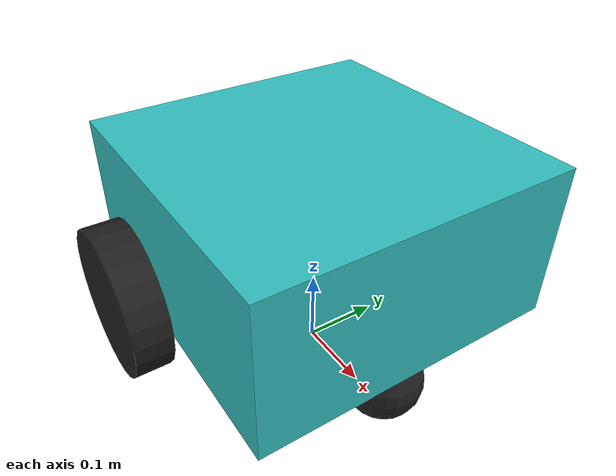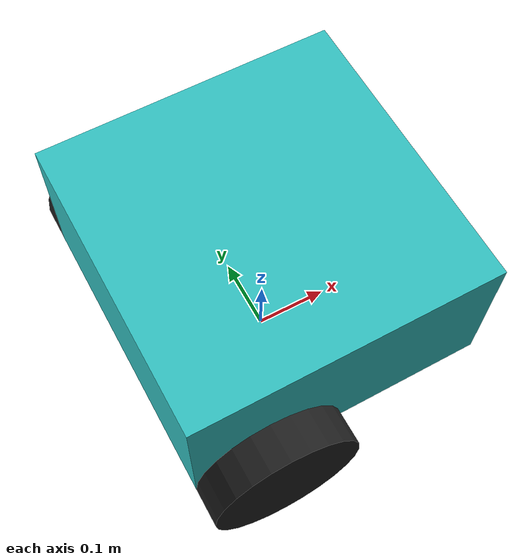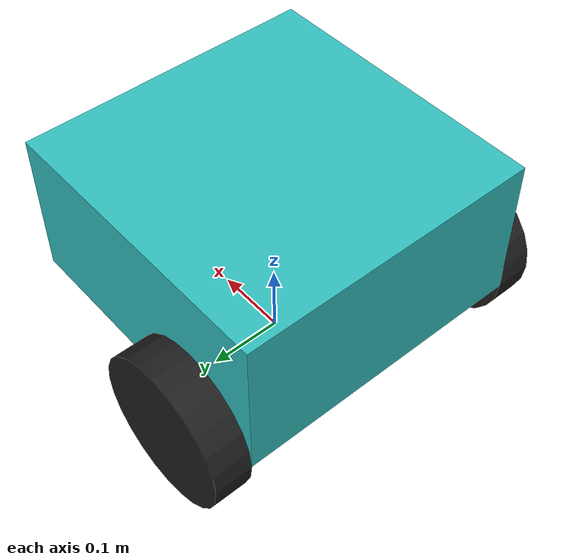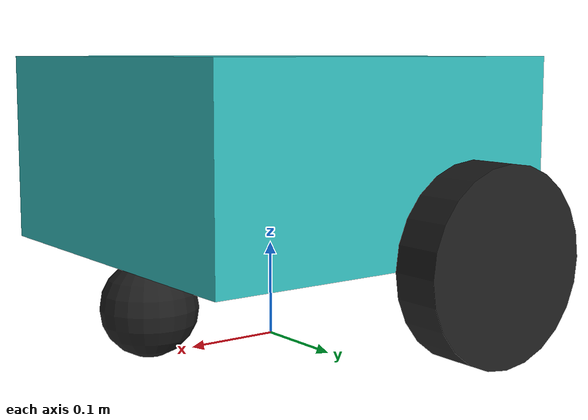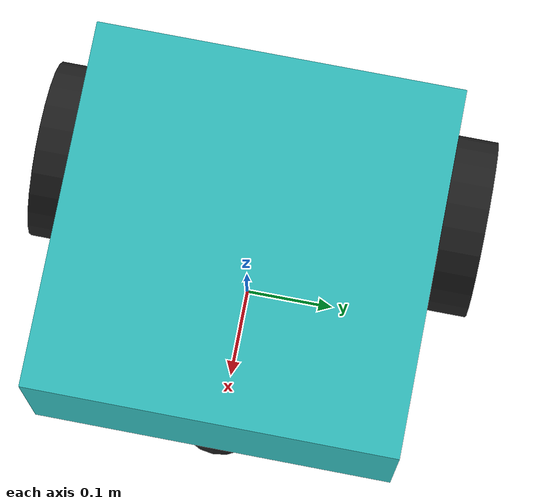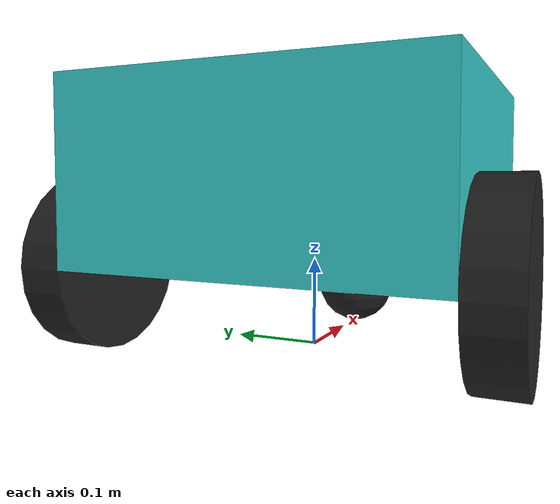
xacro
<?xml version="1.0"?>
<robot xmlns:xacro="http://www.ros.org/wiki/xacro">

    <link name="base_footprint" />

    <joint name="base_joint" type="fixed">
        <parent link="base_footprint" />
        <child link="base_link" />
        <origin xyz="0 0 0.2" rpy="0 0 0" />
    </joint>

    <link name="base_link">
        <visual>
            <geometry>
                <box size="0.4 0.4 0.2" />
            </geometry>
            <origin xyz="0 0 0" rpy="0 0 0" />
            <material name="turquoise" />
        </visual>
        <collision>
            <geometry>
                <box size="0.4 0.4 0.2" />
            </geometry>
            <origin xyz="0 0 0" rpy="0 0 0" />
        </collision>
        <xacro:box_inertia m="5.0" x="0.4" y="0.4" z="0.2"
                           o_xyz="0 0 0" o_rpy="0 0 0" />
    </link>

    <joint name="base_right_wheel_joint" type="continuous">
        <parent link="base_link" />
        <child link="right_wheel_link" />
        <origin xyz="-0.1 -0.225 -0.1" rpy="0 0 0" />
        <axis xyz="0 1 0" />
    </joint>

    <link name="right_wheel_link">
        <visual>
            <geometry>
                <cylinder radius="0.1" length="0.05" />
            </geometry>
            <origin xyz="0 0 0" rpy="1.57 0 0" />
            <material name="black" />
        </visual>
        <collision>
            <geometry>
                <cylinder radius="0.1" length="0.05" />
            </geometry>
            <origin xyz="0 0 0" rpy="1.57 0 0" />
        </collision>
        <xacro:cylinder_inertia m="0.5" r="0.1" l="0.05"
                           o_xyz="0 0 0" o_rpy="1.57 0 0" />
    </link>

    <joint name="base_left_wheel_joint" type="continuous">
        <parent link="base_link" />
        <child link="left_wheel_link" />
        <origin xyz="-0.1 0.225 -0.1" rpy="0 0 0" />
        <axis xyz="0 1 0" />
    </joint>

    <link name="left_wheel_link">
        <visual>
            <geometry>
                <cylinder radius="0.1" length="0.05" />
            </geometry>
            <origin xyz="0 0 0" rpy="1.57 0 0" />
            <material name="black" />
        </visual>
        <collision>
            <geometry>
                <cylinder radius="0.1" length="0.05" />
            </geometry>
            <origin xyz="0 0 0" rpy="1.57 0 0" />
        </collision>
        <xacro:cylinder_inertia m="0.5" r="0.1" l="0.05"
                           o_xyz="0 0 0" o_rpy="1.57 0 0" />
    </link>

    <joint name="base_caster_wheel_joint" type="fixed">
        <parent link="base_link" />
        <child link="caster_wheel_link" />
        <origin xyz="0.15 0 -0.15" rpy="0 0 0" />
    </joint>

    <link name="caster_wheel_link">
        <visual>
            <geometry>
                <sphere radius="0.05" />
            </geometry>
            <origin xyz="0 0 0" rpy="0 0 0" />
            <material name="black" />
        </visual>
        <collision>
            <geometry>
                <sphere radius="0.05" />
            </geometry>
            <origin xyz="0 0 0" rpy="0 0 0" />
        </collision>
        <xacro:sphere_inertia m="0.5" r="0.05"
                           o_xyz="0 0 0" o_rpy="0 0 0" />
    </link>

</robot>
